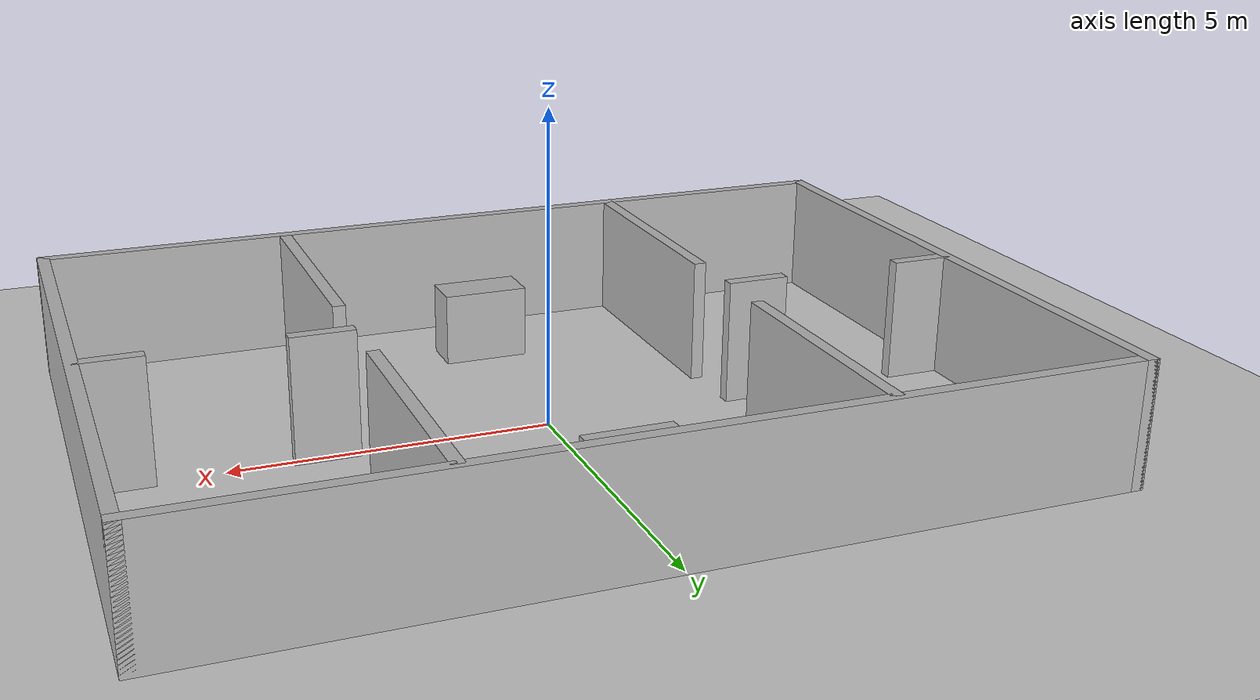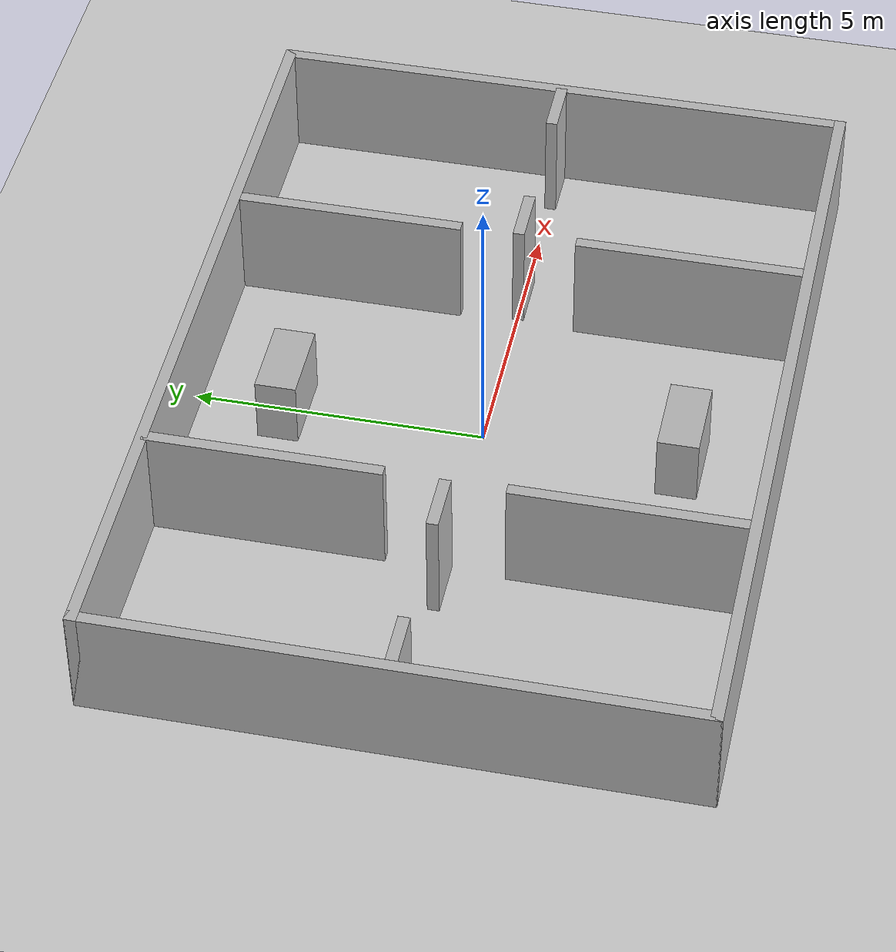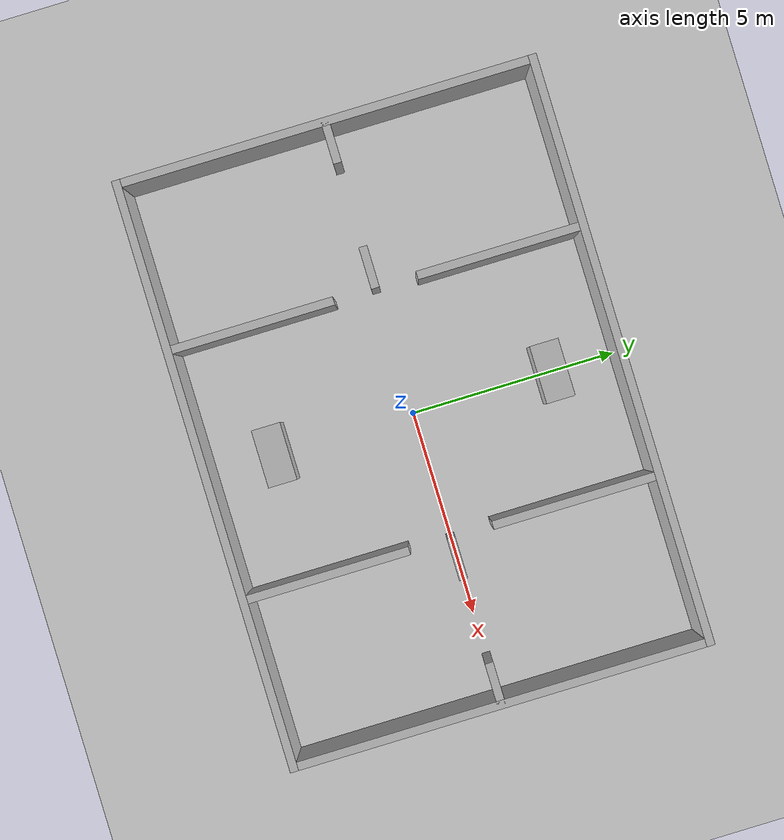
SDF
<sdf version='1.7'>
  <world name='p1c_rooms'>
    <plugin name='gazebo_ros_state' filename='libgazebo_ros_state.so'>
      <ros><namespace>/gazebo</namespace></ros>
      <update_rate>10.0</update_rate>
    </plugin>
    <include><uri>model://sun</uri></include>
    <include><uri>model://ground_plane</uri></include>
    <gravity>0 0 -9.8</gravity>
    <physics type='ode'>
      <max_step_size>0.001</max_step_size>
      <real_time_factor>1</real_time_factor>
      <real_time_update_rate>1000</real_time_update_rate>
    </physics>
    <model name='room_walls'>
      <static>true</static>
      <link name='walls'>
        <collision name='north'><pose>0 5 1 0 0 0</pose><geometry><box><size>14.2 0.2 2</size></box></geometry></collision>
        <visual name='north_visual'><pose>0 5 1 0 0 0</pose><geometry><box><size>14.2 0.2 2</size></box></geometry></visual>
        <collision name='south'><pose>0 -5 1 0 0 0</pose><geometry><box><size>14.2 0.2 2</size></box></geometry></collision>
        <visual name='south_visual'><pose>0 -5 1 0 0 0</pose><geometry><box><size>14.2 0.2 2</size></box></geometry></visual>
        <collision name='east'><pose>7 0 1 0 0 0</pose><geometry><box><size>0.2 10.2 2</size></box></geometry></collision>
        <visual name='east_visual'><pose>7 0 1 0 0 0</pose><geometry><box><size>0.2 10.2 2</size></box></geometry></visual>
        <collision name='west'><pose>-7 0 1 0 0 0</pose><geometry><box><size>0.2 10.2 2</size></box></geometry></collision>
        <visual name='west_visual'><pose>-7 0 1 0 0 0</pose><geometry><box><size>0.2 10.2 2</size></box></geometry></visual>
        <collision name='left_upper'><pose>-3 3 1 0 0 0</pose><geometry><box><size>0.2 4 2</size></box></geometry></collision>
        <visual name='left_upper_visual'><pose>-3 3 1 0 0 0</pose><geometry><box><size>0.2 4 2</size></box></geometry></visual>
        <collision name='left_lower'><pose>-3 -3 1 0 0 0</pose><geometry><box><size>0.2 4 2</size></box></geometry></collision>
        <visual name='left_lower_visual'><pose>-3 -3 1 0 0 0</pose><geometry><box><size>0.2 4 2</size></box></geometry></visual>
        <collision name='right_upper'><pose>3 3 1 0 0 0</pose><geometry><box><size>0.2 4 2</size></box></geometry></collision>
        <visual name='right_upper_visual'><pose>3 3 1 0 0 0</pose><geometry><box><size>0.2 4 2</size></box></geometry></visual>
        <collision name='right_lower'><pose>3 -3 1 0 0 0</pose><geometry><box><size>0.2 4 2</size></box></geometry></collision>
        <visual name='right_lower_visual'><pose>3 -3 1 0 0 0</pose><geometry><box><size>0.2 4 2</size></box></geometry></visual>
        <collision name='left_mid_west'><pose>-6.5 0 1 0 0 0</pose><geometry><box><size>1 0.2 2</size></box></geometry></collision>
        <visual name='left_mid_west_visual'><pose>-6.5 0 1 0 0 0</pose><geometry><box><size>1 0.2 2</size></box></geometry></visual>
        <collision name='left_mid_east'><pose>-3.5 0 1 0 0 0</pose><geometry><box><size>1 0.2 2</size></box></geometry></collision>
        <visual name='left_mid_east_visual'><pose>-3.5 0 1 0 0 0</pose><geometry><box><size>1 0.2 2</size></box></geometry></visual>
        <collision name='right_mid_west'><pose>3.5 0 1 0 0 0</pose><geometry><box><size>1 0.2 2</size></box></geometry></collision>
        <visual name='right_mid_west_visual'><pose>3.5 0 1 0 0 0</pose><geometry><box><size>1 0.2 2</size></box></geometry></visual>
        <collision name='right_mid_east'><pose>6.5 0 1 0 0 0</pose><geometry><box><size>1 0.2 2</size></box></geometry></collision>
        <visual name='right_mid_east_visual'><pose>6.5 0 1 0 0 0</pose><geometry><box><size>1 0.2 2</size></box></geometry></visual>
      </link>
    </model>
    <model name='room_furniture'>
      <static>true</static>
      <link name='furniture'>
        <collision name='cabinet_north'><pose>0 3.4 0.6 0 0 0</pose><geometry><box><size>1.4 0.7 1.2</size></box></geometry></collision>
        <visual name='cabinet_north_visual'><pose>0 3.4 0.6 0 0 0</pose><geometry><box><size>1.4 0.7 1.2</size></box></geometry></visual>
        <collision name='cabinet_south'><pose>0 -3.4 0.6 0 0 0</pose><geometry><box><size>1.4 0.7 1.2</size></box></geometry></collision>
        <visual name='cabinet_south_visual'><pose>0 -3.4 0.6 0 0 0</pose><geometry><box><size>1.4 0.7 1.2</size></box></geometry></visual>
      </link>
    </model>
  </world>
</sdf>
